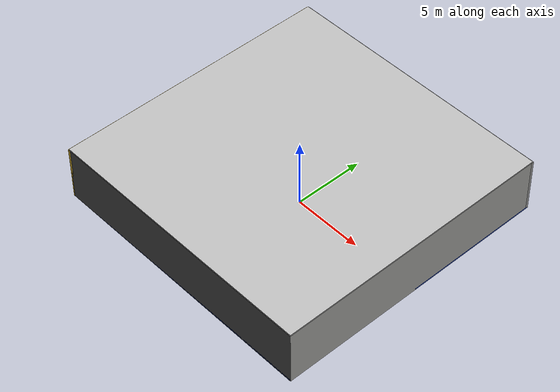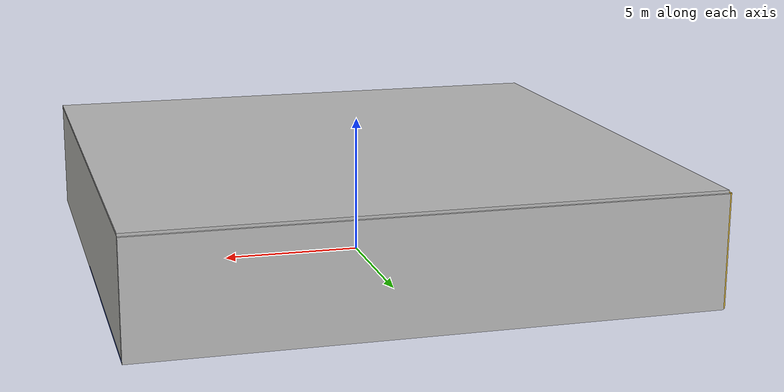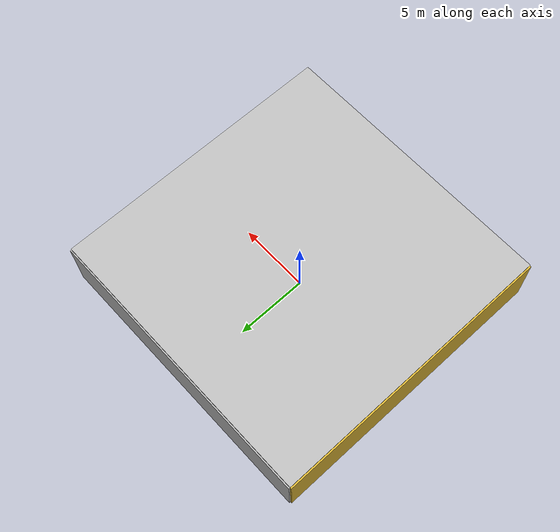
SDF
<sdf version="1.4">
 <world name="default">
  <physics type="ode">
   <max_step_size>0.001</max_step_size>
   <real_time_factor>1</real_time_factor>
   <real_time_update_rate>1000</real_time_update_rate>
   <gravity>0 0 -9.8</gravity>
  </physics>
  <scene><ambient>0.4 0.4 0.4 1</ambient><background>0.7 0.7 0.7 1</background><shadows>1</shadows></scene>
  <model name="Surrounding">
   <static>1</static>
   <link name="Ceiling">
    <collision name="Ceiling_Collision"><geometry><box><size>20 20 0.1</size></box></geometry></collision>
    <visual name="Ceiling_Visual">
     <geometry><box><size>20 20 0.1</size></box></geometry>
     <material>
      <script><uri>file://media/materials/scripts/gazebo.material</uri><name>Gazebo/JointAnchor</name></script>
     </material>
    </visual>
    <pose>0 0 4.05 0 0 0</pose>
   </link>
   <link name="Wall_South">
    <collision name="Wall_South_Collision">
     <geometry><box><size>20 0 4</size></box></geometry>
     <pose>0 0 2 0 -0 0</pose>
    </collision>
    <visual name="Wall_South_Visual">
     <pose>0 0 2 0 -0 0</pose>
     <geometry><box><size>20 0 4</size></box></geometry>
     <material>
      <script><uri>file://media/materials/scripts/gazebo.material</uri><name>Gazebo/DarkGrey</name></script>
     </material>
    </visual>
    <velocity_decay><linear>0</linear><angular>0</angular></velocity_decay>
    <pose>0 -10 0 0 -0 0</pose>
   </link>
   <link name="Wall_East">
    <collision name="Wall_21_Collision">
     <geometry><box><size>20 0 4</size></box></geometry>
     <pose>0 0 2 0 -0 0</pose>
    </collision>
    <visual name="Wall_21_Visual">
     <pose>0 0 2 0 -0 0</pose>
     <geometry><box><size>20 0 4</size></box></geometry>
     <material>
      <script><uri>file://media/materials/scripts/gazebo.material</uri><name>Gazebo/CeilingTiled</name></script>
     </material>
    </visual>
    <velocity_decay><linear>0</linear><angular>0</angular></velocity_decay>
    <pose>10 0 0 0 -0 1.5708</pose>
   </link>
   <link name="Wall_North">
    <collision name="Wall_22_Collision">
     <geometry><box><size>20 0.2 4</size></box></geometry>
     <pose>0 0 2 0 -0 0</pose>
    </collision>
    <visual name="Wall_22_Visual">
     <pose>0 0 2 0 -0 0</pose>
     <geometry><box><size>20 0.2 4</size></box></geometry>
     <material>
      <script><uri>file://media/materials/scripts/gazebo.material</uri><name>Gazebo/JointAnchor</name></script>
     </material>
    </visual>
    <velocity_decay><linear>0</linear><angular>0</angular></velocity_decay>
    <pose>0 10 0 0 -0 0</pose>
   </link>
   <link name="Wall_West">
    <collision name="Wall_23_Collision">
     <geometry><box><size>20 0.2 4</size></box></geometry>
     <pose>0 0 2 0 -0 0</pose>
    </collision>
    <visual name="Wall_23_Visual">
     <pose>0 0 2 0 -0 0</pose>
     <geometry><box><size>20 0.2 4</size></box></geometry>
     <material>
      <script><uri>file://media/materials/scripts/gazebo.material</uri><name>Gazebo/Gold</name></script>
     </material>
    </visual>
    <velocity_decay><linear>0</linear><angular>0</angular></velocity_decay>
    <pose>-10 0 0 0 0 -1.5708</pose>
   </link>
   <link name="Ground_link">
    <collision name="collision">
     <pose>0 0 .05 0 -0 0</pose>
     <geometry><box><size>20 20 0.1</size></box></geometry>
    </collision>
    <visual name="visual">
     <pose>0 0 .05 0 -0 0</pose>
     <geometry><box><size>20 20 0.1</size></box></geometry>
     <material>
      <script><uri>file://media/materials/scripts/gazebo.material</uri><name>Gazebo/Blue</name></script>
     </material>
    </visual>
   </link>
   <static>1</static>
  </model>
  <spherical_coordinates>
   <surface_model>EARTH_WGS84</surface_model>
   <latitude_deg>0</latitude_deg>
   <longitude_deg>0</longitude_deg>
   <elevation>0</elevation>
   <heading_deg>0</heading_deg>
  </spherical_coordinates>
  <light name="lightball_0" type="diffuse">
   <diffuse>0.8 0.8 0.8 1</diffuse>
   <specular>0.2 0.2 0.2 1</specular>
   <attenuation>
    <range>100</range>
    <constant>0.7</constant>
    <linear>0.01</linear>
    <quadratic>0.001</quadratic>
   </attenuation>
   <direction>-0.5 0.1 -0.9</direction>
   <pose>1.1320893485 3.45385947403 3.56417555113 0 0 0</pose>
  </light>
  <light name="lightball_1" type="diffuse">
   <diffuse>0.8 0.8 0.8 1</diffuse>
   <specular>0.2 0.2 0.2 1</specular>
   <attenuation>
    <range>100</range>
    <constant>0.7</constant>
    <linear>0.01</linear>
    <quadratic>0.001</quadratic>
   </attenuation>
   <direction>-0.5 0.1 -0.9</direction>
   <pose>2.1816652149 3.48801588154 3.0560207277 0 0 0</pose>
  </light>
  <light name="lightball_2" type="diffuse">
   <diffuse>0.8 0.8 0.8 1</diffuse>
   <specular>0.2 0.2 0.2 1</specular>
   <attenuation>
    <range>100</range>
    <constant>0.7</constant>
    <linear>0.01</linear>
    <quadratic>0.001</quadratic>
   </attenuation>
   <direction>-0.5 0.1 -0.9</direction>
   <pose>0.258835184706 -0.974027836092 2.84168091691 0 0 0</pose>
  </light>
  <light name="lightball_3" type="diffuse">
   <diffuse>0.8 0.8 0.8 1</diffuse>
   <specular>0.2 0.2 0.2 1</specular>
   <attenuation>
    <range>100</range>
    <constant>0.7</constant>
    <linear>0.01</linear>
    <quadratic>0.001</quadratic>
   </attenuation>
   <direction>-0.5 0.1 -0.9</direction>
   <pose>5.39258794552 6.75916786701 2.71891584932 0 0 0</pose>
  </light>
  <light name="lightball_4" type="diffuse">
   <diffuse>0.8 0.8 0.8 1</diffuse>
   <specular>0.2 0.2 0.2 1</specular>
   <attenuation>
    <range>100</range>
    <constant>0.7</constant>
    <linear>0.01</linear>
    <quadratic>0.001</quadratic>
   </attenuation>
   <direction>-0.5 0.1 -0.9</direction>
   <pose>4.93341615986 3.03634925318 1.22866353128 0 0 0</pose>
  </light>
  <light name="lightball_5" type="diffuse">
   <diffuse>0.8 0.8 0.8 1</diffuse>
   <specular>0.2 0.2 0.2 1</specular>
   <attenuation>
    <range>100</range>
    <constant>0.7</constant>
    <linear>0.01</linear>
    <quadratic>0.001</quadratic>
   </attenuation>
   <direction>-0.5 0.1 -0.9</direction>
   <pose>-4.64761920949 -0.415582731542 1.62526910107 0 0 0</pose>
  </light>
  <include>
   <uri>model://robocup_3Dsim_goal</uri>
   <pose>-4.84455261861 1.04405865955 0 0 0 3.00872458282</pose>
  </include>
  <include>
   <uri>model://textured_shapes</uri>
   <pose>2.42200402465 -2.66158031115 0 0 0 1.35261464004</pose>
  </include>
  <include><uri>model://cabinet</uri><pose>4.86293286866 7.73679692627 0 0 0 2.37070752095</pose></include>
 </world>
</sdf>

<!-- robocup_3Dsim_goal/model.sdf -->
<sdf version="1.5">
  <model name="robocup_3d_goal">
    <static>true</static>
    <link name="left_post">
      <pose>0 1.05 0.45 0 0 0</pose>
      <collision name="collision">
        <geometry>
          <cylinder>
            <radius>0.05</radius>
            <length>0.9</length>
          </cylinder>
        </geometry>
      </collision>
      <visual name="visual">
        <geometry>
          <cylinder>
            <radius>0.05</radius>
            <length>0.9</length>
          </cylinder>
        </geometry>
        <material>
          <script>
            <uri>file://media/materials/scripts/gazebo.material</uri>
            <name>Gazebo/ZincYellow</name>
          </script>
        </material>
      </visual>
    </link>
    <link name="left_support_horiz_lower">
      <pose>0.30 1.05 0.01 0 0 0</pose>
      <collision name="collision">
        <geometry>
          <box>
            <size>0.50 0.02 0.02</size>
          </box>
        </geometry>
      </collision>
      <visual name="visual">
        <geometry>
          <box>
            <size>0.50 0.02 0.02</size>
          </box>
        </geometry>
        <material>
          <script>
            <uri>file://media/materials/scripts/gazebo.material</uri>
            <name>Gazebo/White</name>
          </script>
        </material>
      </visual>
    </link>
    <link name="left_support_horiz_upper">
      <pose>0.30 1.05 0.79 0 0 0</pose>
      <collision name="collision">
        <geometry>
          <box>
            <size>0.50 0.02 0.02</size>
          </box>
        </geometry>
      </collision>
      <visual name="visual">
        <geometry>
          <box>
            <size>0.50 0.02 0.02</size>
          </box>
        </geometry>
        <material>
          <script>
            <uri>file://media/materials/scripts/gazebo.material</uri>
            <name>Gazebo/White</name>
          </script>
        </material>
      </visual>
    </link>
    <link name="left_support_vertical">
      <pose>0.56 1.05 0.4 0 1.5708 0</pose>
      <collision name="collision">
        <geometry>
          <box>
            <size>0.80 0.02 0.02</size>
          </box>
        </geometry>
      </collision>
      <visual name="visual">
        <geometry>
          <box>
            <size>0.80 0.02 0.02</size>
          </box>
        </geometry>
        <material>
          <script>
            <uri>file://media/materials/scripts/gazebo.material</uri>
            <name>Gazebo/White</name>
          </script>
        </material>
      </visual>
    </link>
    <link name="right_support_horiz_lower">
      <pose>0.30 -1.05 0.01 0 0 0</pose>
      <collision name="collision">
        <geometry>
          <box>
            <size>0.50 0.02 0.02</size>
          </box>
        </geometry>
      </collision>
      <visual name="visual">
        <geometry>
          <box>
            <size>0.50 0.02 0.02</size>
          </box>
        </geometry>
        <material>
          <script>
            <uri>file://media/materials/scripts/gazebo.material</uri>
            <name>Gazebo/White</name>
          </script>
        </material>
      </visual>
    </link>
    <link name="right_support_horiz_upper">
      <pose>0.30 -1.05 0.79 0 0 0</pose>
      <collision name="collision">
        <geometry>
          <box>
            <size>0.50 0.02 0.02</size>
          </box>
        </geometry>
      </collision>
      <visual name="visual">
        <geometry>
          <box>
            <size>0.50 0.02 0.02</size>
          </box>
        </geometry>
        <material>
          <script>
            <uri>file://media/materials/scripts/gazebo.material</uri>
            <name>Gazebo/White</name>
          </script>
        </material>
      </visual>
    </link>
    <link name="right_support_vertical">
      <pose>0.56 -1.05 0.4 0 1.5708 0</pose>
      <collision name="collision">
        <geometry>
          <box>
            <size>0.80 0.02 0.02</size>
          </box>
        </geometry>
      </collision>
      <visual name="visual">
        <geometry>
          <box>
            <size>0.80 0.02 0.02</size>
          </box>
        </geometry>
        <material>
          <script>
            <uri>file://media/materials/scripts/gazebo.material</uri>
            <name>Gazebo/White</name>
          </script>
        </material>
      </visual>
    </link>
    <link name="center_support_horiz_lower">
      <pose>0.56 0 0.01 0 1.5708 0</pose>
      <collision name="collision">
        <geometry>
          <box>
            <size>0.02 2.08 0.02</size>
          </box>
        </geometry>
      </collision>
      <visual name="visual">
        <geometry>
          <box>
            <size>0.02 2.08 0.02</size>
          </box>
        </geometry>
        <material>
          <script>
            <uri>file://media/materials/scripts/gazebo.material</uri>
            <name>Gazebo/White</name>
          </script>
        </material>
      </visual>
    </link>
    <link name="center_support_horiz_upper">
      <pose>0.56 0 0.79 0 1.5708 0</pose>
      <collision name="collision">
        <geometry>
          <box>
            <size>0.02 2.08 0.02</size>
          </box>
        </geometry>
      </collision>
      <visual name="visual">
        <geometry>
          <box>
            <size>0.02 2.08 0.02</size>
          </box>
        </geometry>
        <material>
          <script>
            <uri>file://media/materials/scripts/gazebo.material</uri>
            <name>Gazebo/White</name>
          </script>
        </material>
      </visual>
    </link>
    <link name="right_post">
      <pose>0 -1.05 0.45 0 0 0</pose>
      <collision name="collision">
        <geometry>
          <cylinder>
            <radius>0.05</radius>
            <length>0.9</length>
          </cylinder>
        </geometry>
      </collision>
      <visual name="visual">
        <geometry>
          <cylinder>
            <radius>0.05</radius>
            <length>0.9</length>
          </cylinder>
        </geometry>
        <material>
          <script>
            <uri>file://media/materials/scripts/gazebo.material</uri>
            <name>Gazebo/ZincYellow</name>
          </script>
        </material>
      </visual>
    </link>
    <link name="crossbar">
      <pose>0 0 0.85 1.57 1.57 0</pose>
      <collision name="collision">
        <geometry>
          <cylinder>
            <radius>0.05</radius>
            <length>2.0</length>
          </cylinder>
        </geometry>
      </collision>
      <visual name="visual">
        <geometry>
          <cylinder>
            <radius>0.05</radius>
            <length>2.0</length>
          </cylinder>
        </geometry>
        <material>
          <script>
            <uri>file://media/materials/scripts/gazebo.material</uri>
            <name>Gazebo/ZincYellow</name>
          </script>
        </material>
      </visual>
    </link>
    <link name="center_net">
      <pose>0.56 0 0.40 0 0 0</pose>
      <collision name="collision">
        <geometry>
          <box>
            <size>0.01 2.1 0.80</size>
          </box>
        </geometry>
      </collision>
      <visual name="visual">
        <geometry>
          <box>
            <size>0.01 2.1 0.80</size>
          </box>
        </geometry>
        <material>
          <script>
            <uri>model://../model_source/models/robocup09_spl_field/materials/scripts/</uri>
            <uri>model://../model_source/models/robocup09_spl_field/materials/textures/</uri>
            <name>RoboCup/Net</name>
          </script>
        </material>
      </visual>
    </link>
    <link name="left_net">
      <pose>0.30 1.05 0.40 0 0 0</pose>
      <collision name="collision">
        <geometry>
          <box>
            <size>0.50 0.01 0.76</size>
          </box>
        </geometry>
      </collision>
      <visual name="visual">
        <geometry>
          <box>
            <size>0.50 0.01 0.76</size>
          </box>
        </geometry>
        <material>
          <script>
            <uri>model://../model_source/models/robocup09_spl_field/materials/scripts/</uri>
            <uri>model://../model_source/models/robocup09_spl_field/materials/textures/</uri>
            <name>RoboCup/Net</name>
          </script>
        </material>
      </visual>
    </link>
    <link name="right_net">
      <pose>0.30 -1.05 0.40 0 0 0</pose>
      <collision name="collision">
        <geometry>
          <box>
            <size>0.50 0.01 0.76</size>
          </box>
        </geometry>
      </collision>
      <visual name="visual">
        <geometry>
          <box>
            <size>0.50 0.01 0.76</size>
          </box>
        </geometry>
        <material>
          <script>
            <uri>model://../model_source/models/robocup09_spl_field/materials/scripts/</uri>
            <uri>model://../model_source/models/robocup09_spl_field/materials/textures/</uri>
            <name>RoboCup/Net</name>
          </script>
        </material>
      </visual>
    </link>
  </model>
</sdf>

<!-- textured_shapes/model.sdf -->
<sdf version="1.6">
  <model name="textured_shapes">
    <pose>0 0 0.5 0 0 0</pose>
    <link name="box">
      <pose>0 -1.5 0 0 0 0</pose>
      <collision name="collision">
        <geometry>
          <box>
            <size>1 1 1</size>
          </box>
        </geometry>
      </collision>
      <visual name="visual">
        <geometry>
          <box>
            <size>1 1 1</size>
          </box>
        </geometry>
        <material>
          <script>
            <uri>model://../model_source/models/textured_shapes/materials/scripts</uri>
            <uri>model://../model_source/models/textured_shapes/materials/textures</uri>
            <name>TexturedShape/Squares</name>
          </script>
        </material>
      </visual>
    </link>
    <link name="sphere">
      <collision name="collision">
        <geometry>
          <sphere>
            <radius>0.5</radius>
          </sphere>
        </geometry>
      </collision>
      <visual name="visual">
        <geometry>
          <sphere>
            <radius>0.5</radius>
          </sphere>
        </geometry>
        <material>
          <script>
            <uri>model://../model_source/models/textured_shapes/materials/scripts</uri>
            <uri>model://../model_source/models/textured_shapes/materials/textures</uri>
            <name>TexturedShape/Squares</name>
          </script>
        </material>
      </visual>
    </link>
    <link name="cylinder">
      <pose>0 1.5 0 0 0 0</pose>
      <collision name="collision">
        <geometry>
          <cylinder>
            <radius>0.5</radius>
            <length>1</length>
          </cylinder>
        </geometry>
      </collision>
      <visual name="visual">
        <geometry>
          <cylinder>
            <radius>0.5</radius>
            <length>1</length>
          </cylinder>
        </geometry>
        <material>
          <script>
            <uri>model://../model_source/models/textured_shapes/materials/scripts</uri>
            <uri>model://../model_source/models/textured_shapes/materials/textures</uri>
            <name>TexturedShape/Squares</name>
          </script>
        </material>
      </visual>
    </link>
  </model>
</sdf>

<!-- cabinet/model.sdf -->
<sdf version="1.5">
  <model name="cabinet">
    <static>true</static>
    <link name="cabinet_bottom_plate">
      <inertial>
        <pose>0 0 -1 0 0 0</pose>
        <inertia>
          <ixx>2.050000</ixx>
          <ixy>0</ixy>
          <ixz>0</ixz>
          <iyy>2.050000</iyy>
          <iyz>0</iyz>
          <izz>2.050000</izz>
        </inertia>
        <mass>25.000000</mass>
      </inertial>
      <collision name="cabinet_bottom_plate_geom">
        <pose>0 0 0.010000 0 0 0</pose>
        <geometry>
          <box>
            <size>0.450000 0.450000 0.020000</size>
          </box>
        </geometry>
      </collision>
      <visual name="cabinet_bottom_plate_geom_visual">
        <pose>0 0 0.010000 0 0 0</pose>
        <geometry>
          <box>
            <size>0.450000 0.450000 0.020000</size>
          </box>
        </geometry>
        <material>
          <script>
            <uri>model://media/materials/scripts/gazebo.material</uri>
            <name>Gazebo/Wood</name>
          </script>
        </material>
      </visual>
      <collision name="cabinet_bottom_plate_geom_cabinet_back_plate">
        <pose>0.235000 0 0.510000 0 0 0</pose>
        <geometry>
          <box>
            <size>0.020000 0.450000 1.020000</size>
          </box>
        </geometry>
      </collision>
      <visual name="cabinet_bottom_plate_geom_cabinet_back_plate_visual">
        <pose>0.235000 0 0.510000 0 0 0</pose>
        <geometry>
          <box>
            <size>0.020000 0.450000 1.020000</size>
          </box>
        </geometry>
        <material>
          <script>
            <uri>model://media/materials/scripts/gazebo.material</uri>
            <name>Gazebo/Wood</name>
          </script>
        </material>
      </visual>
      <collision name="cabinet_bottom_plate_geom_cabinet_left_plate">
        <pose>0 0.235000 0.510000 0 0 0</pose>
        <geometry>
          <box>
            <size>0.450000 0.020000 1.020000</size>
          </box>
        </geometry>
      </collision>
      <visual name="cabinet_bottom_plate_geom_cabinet_left_plate_visual">
        <pose>0 0.235000 0.510000 0 0 0</pose>
        <geometry>
          <box>
            <size>0.450000 0.020000 1.020000</size>
          </box>
        </geometry>
        <material>
          <script>
            <uri>model://media/materials/scripts/gazebo.material</uri>
            <name>Gazebo/Wood</name>
          </script>
        </material>
      </visual>
      <collision name="cabinet_bottom_plate_geom_cabinet_middle_plate">
        <pose>0 0 0.510000 0 0 0</pose>
        <geometry>
          <box>
            <size>0.450000 0.450000 0.020000</size>
          </box>
        </geometry>
      </collision>
      <visual name="cabinet_bottom_plate_geom_cabinet_middle_plate_visual">
        <pose>0 0 0.510000 0 0 0</pose>
        <geometry>
          <box>
            <size>0.450000 0.450000 0.020000</size>
          </box>
        </geometry>
        <material>
          <script>
            <uri>model://media/materials/scripts/gazebo.material</uri>
            <name>Gazebo/Wood</name>
          </script>
        </material>
      </visual>
      <collision name="cabinet_bottom_plate_geom_cabinet_right_plate">
        <pose>0 -0.235000 0.510000 0 0 0</pose>
        <geometry>
          <box>
            <size>0.450000 0.020000 1.020000</size>
          </box>
        </geometry>
      </collision>
      <visual name="cabinet_bottom_plate_geom_cabinet_right_plate_visual">
        <pose>0 -0.235000 0.510000 0 0 0</pose>
        <geometry>
          <box>
            <size>0.450000 0.020000 1.020000</size>
          </box>
        </geometry>
        <material>
          <script>
            <uri>model://media/materials/scripts/gazebo.material</uri>
            <name>Gazebo/Wood</name>
          </script>
        </material>
      </visual>
      <collision name="cabinet_bottom_plate_geom_cabinet_top_plate">
        <pose>0 0 1.010000 0 0 0</pose>
        <geometry>
          <box>
            <size>0.450000 0.450000 0.020000</size>
          </box>
        </geometry>
      </collision>
      <visual name="cabinet_bottom_plate_geom_cabinet_top_plate_visual">
        <pose>0 0 1.010000 0 0 0</pose>
        <geometry>
          <box>
            <size>0.450000 0.450000 0.020000</size>
          </box>
        </geometry>
        <material>
          <script>
            <uri>model://media/materials/scripts/gazebo.material</uri>
            <name>Gazebo/Wood</name>
          </script>
        </material>
      </visual>
    </link>
  </model>
</sdf>
